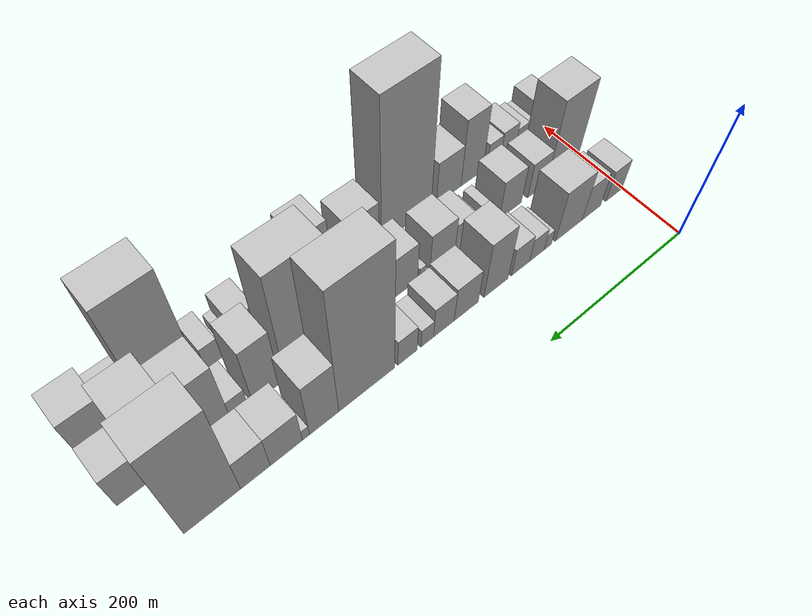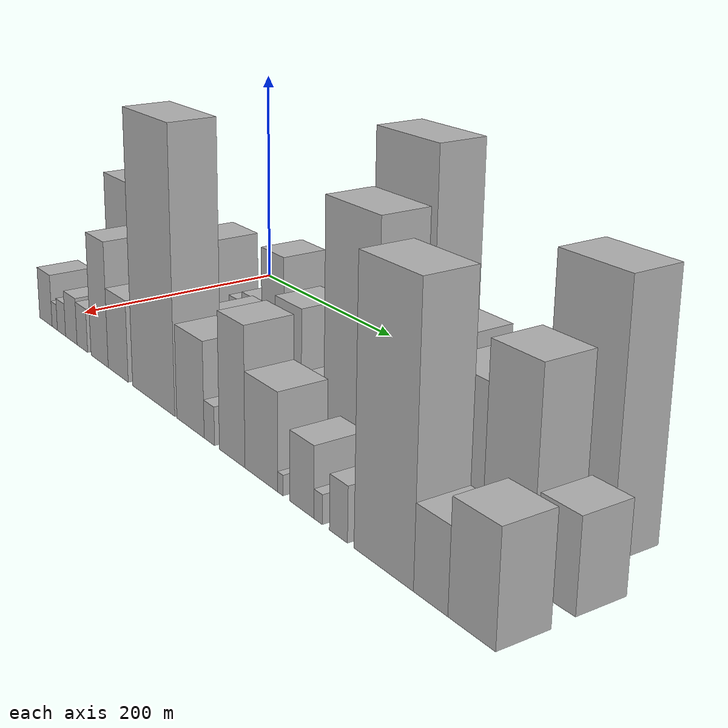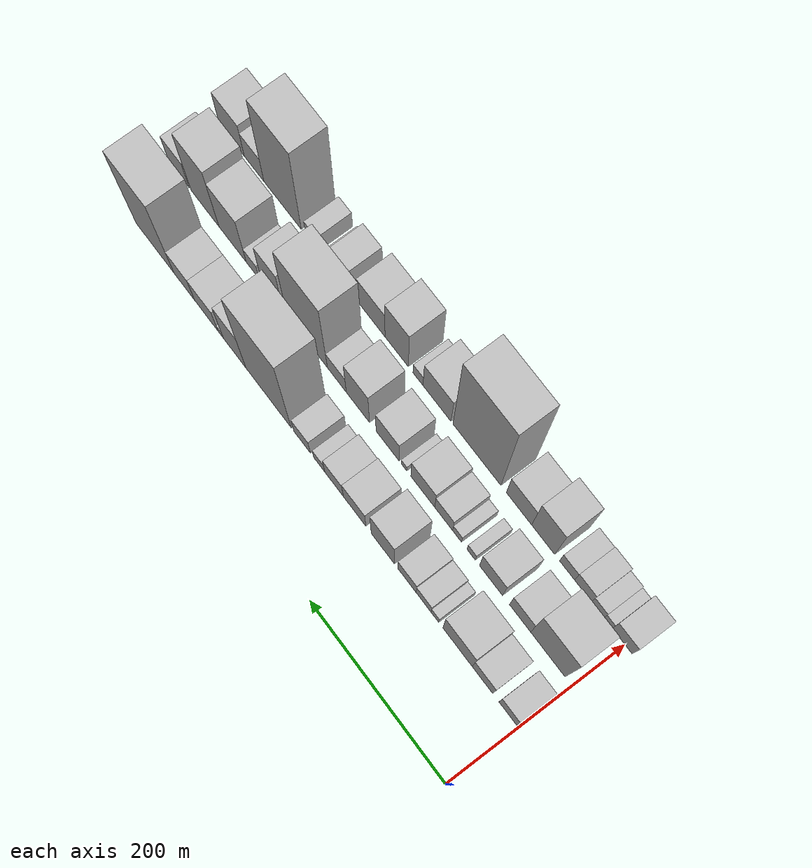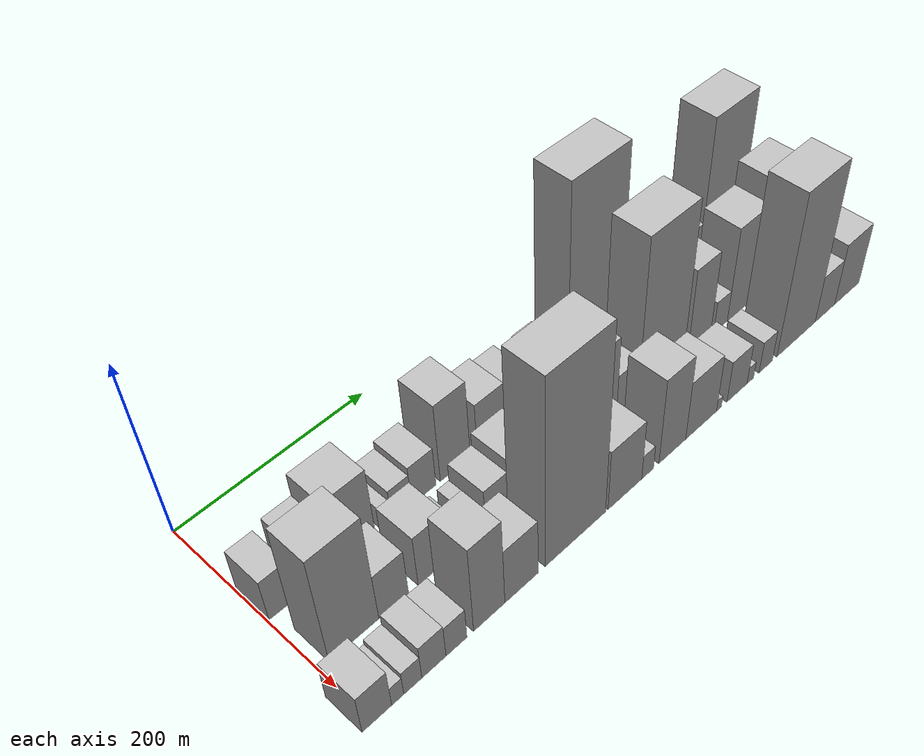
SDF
<sdf version="1.6">
 <world name="default">
  <model name="building_18">
   <static>1</static>
   <pose>100.0000 14.7104 0 0.000000 0.000000 0.000000</pose>
   <link name="link">
    <pose>0 0 25.50 0 0 0</pose>
    <collision name="collision"><geometry><box><size>40.0000 26.3379 51.0000</size></box></geometry></collision>
    <visual name="visual">
     <cast_shadows>0</cast_shadows>
     <geometry><box><size>40.0000 26.3379 51.0000</size></box></geometry>
     <material>
      <script>
       <uri>model://HANNAS_wall/materials/scripts</uri>
       <uri>model://HANNAS_wall/materials/textures</uri>
       <name>vrc/HANNAS_wall</name>
      </script>
     </material>
    </visual>
   </link>
  </model>
  <model name="building_19">
   <static>1</static>
   <pose>100.0000 51.6035 0 0.000000 0.000000 0.000000</pose>
   <link name="link">
    <pose>0 0 28.50 0 0 0</pose>
    <collision name="collision"><geometry><box><size>40.0000 29.4482 57.0000</size></box></geometry></collision>
    <visual name="visual">
     <cast_shadows>0</cast_shadows>
     <geometry><box><size>40.0000 29.4482 57.0000</size></box></geometry>
     <material>
      <script>
       <uri>model://HANNAS_wall/materials/scripts</uri>
       <uri>model://HANNAS_wall/materials/textures</uri>
       <name>vrc/HANNAS_wall</name>
      </script>
     </material>
    </visual>
   </link>
  </model>
  <model name="building_20">
   <static>1</static>
   <pose>100.0000 87.7488 0 0.000000 0.000000 0.000000</pose>
   <link name="link">
    <pose>0 0 42.00 0 0 0</pose>
    <collision name="collision"><geometry><box><size>40.0000 42.8424 84.0000</size></box></geometry></collision>
    <visual name="visual">
     <cast_shadows>0</cast_shadows>
     <geometry><box><size>40.0000 42.8424 84.0000</size></box></geometry>
     <material>
      <script>
       <uri>model://HANNAS_wall/materials/scripts</uri>
       <uri>model://HANNAS_wall/materials/textures</uri>
       <name>vrc/HANNAS_wall</name>
      </script>
     </material>
    </visual>
   </link>
  </model>
  <model name="building_21">
   <static>1</static>
   <pose>100.0000 120.8142 0 0.000000 0.000000 0.000000</pose>
   <link name="link">
    <pose>0 0 13.50 0 0 0</pose>
    <collision name="collision"><geometry><box><size>40.0000 11.2885 27.0000</size></box></geometry></collision>
    <visual name="visual">
     <cast_shadows>0</cast_shadows>
     <geometry><box><size>40.0000 11.2885 27.0000</size></box></geometry>
     <material>
      <script>
       <uri>model://HANNAS_wall/materials/scripts</uri>
       <uri>model://HANNAS_wall/materials/textures</uri>
       <name>vrc/HANNAS_wall</name>
      </script>
     </material>
    </visual>
   </link>
  </model>
  <model name="building_22">
   <static>1</static>
   <pose>100.0000 137.4908 0 0.000000 0.000000 0.000000</pose>
   <link name="link">
    <pose>0 0 19.50 0 0 0</pose>
    <collision name="collision"><geometry><box><size>40.0000 22.0646 39.0000</size></box></geometry></collision>
    <visual name="visual">
     <cast_shadows>0</cast_shadows>
     <geometry><box><size>40.0000 22.0646 39.0000</size></box></geometry>
     <material>
      <script>
       <uri>model://HANNAS_wall/materials/scripts</uri>
       <uri>model://HANNAS_wall/materials/textures</uri>
       <name>vrc/HANNAS_wall</name>
      </script>
     </material>
    </visual>
   </link>
  </model>
  <model name="building_23">
   <static>1</static>
   <pose>100.0000 162.0961 0 0.000000 0.000000 0.000000</pose>
   <link name="link">
    <pose>0 0 24.00 0 0 0</pose>
    <collision name="collision"><geometry><box><size>40.0000 27.1462 48.0000</size></box></geometry></collision>
    <visual name="visual">
     <cast_shadows>0</cast_shadows>
     <geometry><box><size>40.0000 27.1462 48.0000</size></box></geometry>
     <material>
      <script>
       <uri>model://HANNAS_wall/materials/scripts</uri>
       <uri>model://HANNAS_wall/materials/textures</uri>
       <name>vrc/HANNAS_wall</name>
      </script>
     </material>
    </visual>
   </link>
  </model>
  <model name="building_24">
   <static>1</static>
   <pose>100.0000 198.0278 0 0.000000 0.000000 0.000000</pose>
   <link name="link">
    <pose>0 0 48.00 0 0 0</pose>
    <collision name="collision"><geometry><box><size>40.0000 34.7173 96.0000</size></box></geometry></collision>
    <visual name="visual">
     <cast_shadows>0</cast_shadows>
     <geometry><box><size>40.0000 34.7173 96.0000</size></box></geometry>
     <material>
      <script>
       <uri>model://HANNAS_wall/materials/scripts</uri>
       <uri>model://HANNAS_wall/materials/textures</uri>
       <name>vrc/HANNAS_wall</name>
      </script>
     </material>
    </visual>
   </link>
  </model>
  <model name="building_25">
   <static>1</static>
   <pose>100.0000 240.3025 0 0.000000 0.000000 0.000000</pose>
   <link name="link">
    <pose>0 0 30.00 0 0 0</pose>
    <collision name="collision"><geometry><box><size>40.0000 33.8321 60.0000</size></box></geometry></collision>
    <visual name="visual">
     <cast_shadows>0</cast_shadows>
     <geometry><box><size>40.0000 33.8321 60.0000</size></box></geometry>
     <material>
      <script>
       <uri>model://HANNAS_wall/materials/scripts</uri>
       <uri>model://HANNAS_wall/materials/textures</uri>
       <name>vrc/HANNAS_wall</name>
      </script>
     </material>
    </visual>
   </link>
  </model>
  <model name="building_26">
   <static>1</static>
   <pose>100.0000 271.3772 0 0.000000 0.000000 0.000000</pose>
   <link name="link">
    <pose>0 0 27.00 0 0 0</pose>
    <collision name="collision"><geometry><box><size>40.0000 28.3173 54.0000</size></box></geometry></collision>
    <visual name="visual">
     <cast_shadows>0</cast_shadows>
     <geometry><box><size>40.0000 28.3173 54.0000</size></box></geometry>
     <material>
      <script>
       <uri>model://HANNAS_wall/materials/scripts</uri>
       <uri>model://HANNAS_wall/materials/textures</uri>
       <name>vrc/HANNAS_wall</name>
      </script>
     </material>
    </visual>
   </link>
  </model>
  <model name="building_27">
   <static>1</static>
   <pose>100.0000 293.9437 0 0.000000 0.000000 0.000000</pose>
   <link name="link">
    <pose>0 0 16.50 0 0 0</pose>
    <collision name="collision"><geometry><box><size>40.0000 16.8156 33.0000</size></box></geometry></collision>
    <visual name="visual">
     <cast_shadows>0</cast_shadows>
     <geometry><box><size>40.0000 16.8156 33.0000</size></box></geometry>
     <material>
      <script>
       <uri>model://HANNAS_wall/materials/scripts</uri>
       <uri>model://HANNAS_wall/materials/textures</uri>
       <name>vrc/HANNAS_wall</name>
      </script>
     </material>
    </visual>
   </link>
  </model>
  <model name="building_28">
   <static>1</static>
   <pose>100.0000 320.1187 0 0.000000 0.000000 0.000000</pose>
   <link name="link">
    <pose>0 0 24.00 0 0 0</pose>
    <collision name="collision"><geometry><box><size>40.0000 25.5344 48.0000</size></box></geometry></collision>
    <visual name="visual">
     <cast_shadows>0</cast_shadows>
     <geometry><box><size>40.0000 25.5344 48.0000</size></box></geometry>
     <material>
      <script>
       <uri>model://HANNAS_wall/materials/scripts</uri>
       <uri>model://HANNAS_wall/materials/textures</uri>
       <name>vrc/HANNAS_wall</name>
      </script>
     </material>
    </visual>
   </link>
  </model>
  <model name="building_29">
   <static>1</static>
   <pose>100.0000 372.0678 0 0.000000 0.000000 0.000000</pose>
   <link name="link">
    <pose>0 0 112.50 0 0 0</pose>
    <collision name="collision"><geometry><box><size>40.0000 70.3638 225.0000</size></box></geometry></collision>
    <visual name="visual">
     <cast_shadows>0</cast_shadows>
     <geometry><box><size>40.0000 70.3638 225.0000</size></box></geometry>
     <material>
      <script>
       <uri>model://HANNAS_wall/materials/scripts</uri>
       <uri>model://HANNAS_wall/materials/textures</uri>
       <name>vrc/HANNAS_wall</name>
      </script>
     </material>
    </visual>
   </link>
  </model>
  <model name="building_30">
   <static>1</static>
   <pose>100.0000 424.9010 0 0.000000 0.000000 0.000000</pose>
   <link name="link">
    <pose>0 0 51.00 0 0 0</pose>
    <collision name="collision"><geometry><box><size>40.0000 35.3027 102.0000</size></box></geometry></collision>
    <visual name="visual">
     <cast_shadows>0</cast_shadows>
     <geometry><box><size>40.0000 35.3027 102.0000</size></box></geometry>
     <material>
      <script>
       <uri>model://HANNAS_wall/materials/scripts</uri>
       <uri>model://HANNAS_wall/materials/textures</uri>
       <name>vrc/HANNAS_wall</name>
      </script>
     </material>
    </visual>
   </link>
  </model>
  <model name="building_31">
   <static>1</static>
   <pose>100.0000 446.7557 0 0.000000 0.000000 0.000000</pose>
   <link name="link">
    <pose>0 0 10.50 0 0 0</pose>
    <collision name="collision"><geometry><box><size>40.0000 8.4066 21.0000</size></box></geometry></collision>
    <visual name="visual">
     <cast_shadows>0</cast_shadows>
     <geometry><box><size>40.0000 8.4066 21.0000</size></box></geometry>
     <material>
      <script>
       <uri>model://HANNAS_wall/materials/scripts</uri>
       <uri>model://HANNAS_wall/materials/textures</uri>
       <name>vrc/HANNAS_wall</name>
      </script>
     </material>
    </visual>
   </link>
  </model>
  <model name="building_32">
   <static>1</static>
   <pose>100.0000 469.5664 0 0.000000 0.000000 0.000000</pose>
   <link name="link">
    <pose>0 0 31.50 0 0 0</pose>
    <collision name="collision"><geometry><box><size>40.0000 37.2149 63.0000</size></box></geometry></collision>
    <visual name="visual">
     <cast_shadows>0</cast_shadows>
     <geometry><box><size>40.0000 37.2149 63.0000</size></box></geometry>
     <material>
      <script>
       <uri>model://HANNAS_wall/materials/scripts</uri>
       <uri>model://HANNAS_wall/materials/textures</uri>
       <name>vrc/HANNAS_wall</name>
      </script>
     </material>
    </visual>
   </link>
  </model>
  <model name="building_33">
   <static>1</static>
   <pose>100.0000 504.7815 0 0.000000 0.000000 0.000000</pose>
   <link name="link">
    <pose>0 0 31.50 0 0 0</pose>
    <collision name="collision"><geometry><box><size>40.0000 33.2151 63.0000</size></box></geometry></collision>
    <visual name="visual">
     <cast_shadows>0</cast_shadows>
     <geometry><box><size>40.0000 33.2151 63.0000</size></box></geometry>
     <material>
      <script>
       <uri>model://HANNAS_wall/materials/scripts</uri>
       <uri>model://HANNAS_wall/materials/textures</uri>
       <name>vrc/HANNAS_wall</name>
      </script>
     </material>
    </visual>
   </link>
  </model>
  <model name="building_34">
   <static>1</static>
   <pose>100.0000 552.0399 0 0.000000 0.000000 0.000000</pose>
   <link name="link">
    <pose>0 0 91.50 0 0 0</pose>
    <collision name="collision"><geometry><box><size>40.0000 61.3017 183.0000</size></box></geometry></collision>
    <visual name="visual">
     <cast_shadows>0</cast_shadows>
     <geometry><box><size>40.0000 61.3017 183.0000</size></box></geometry>
     <material>
      <script>
       <uri>model://HANNAS_wall/materials/scripts</uri>
       <uri>model://HANNAS_wall/materials/textures</uri>
       <name>vrc/HANNAS_wall</name>
      </script>
     </material>
    </visual>
   </link>
  </model>
  <model name="building_52">
   <static>1</static>
   <pose>160.0000 34.5649 0 0.000000 0.000000 0.000000</pose>
   <link name="link">
    <pose>0 0 66.00 0 0 0</pose>
    <collision name="collision"><geometry><box><size>40.0000 49.4119 132.0000</size></box></geometry></collision>
    <visual name="visual">
     <cast_shadows>0</cast_shadows>
     <geometry><box><size>40.0000 49.4119 132.0000</size></box></geometry>
     <material>
      <script>
       <uri>model://HANNAS_wall/materials/scripts</uri>
       <uri>model://HANNAS_wall/materials/textures</uri>
       <name>vrc/HANNAS_wall</name>
      </script>
     </material>
    </visual>
   </link>
  </model>
  <model name="building_53">
   <static>1</static>
   <pose>160.0000 74.5539 0 0.000000 0.000000 0.000000</pose>
   <link name="link">
    <pose>0 0 28.50 0 0 0</pose>
    <collision name="collision"><geometry><box><size>40.0000 30.5662 57.0000</size></box></geometry></collision>
    <visual name="visual">
     <cast_shadows>0</cast_shadows>
     <geometry><box><size>40.0000 30.5662 57.0000</size></box></geometry>
     <material>
      <script>
       <uri>model://HANNAS_wall/materials/scripts</uri>
       <uri>model://HANNAS_wall/materials/textures</uri>
       <name>vrc/HANNAS_wall</name>
      </script>
     </material>
    </visual>
   </link>
  </model>
  <model name="building_54">
   <static>1</static>
   <pose>160.0000 116.7349 0 0.000000 0.000000 0.000000</pose>
   <link name="link">
    <pose>0 0 31.50 0 0 0</pose>
    <collision name="collision"><geometry><box><size>40.0000 33.7958 63.0000</size></box></geometry></collision>
    <visual name="visual">
     <cast_shadows>0</cast_shadows>
     <geometry><box><size>40.0000 33.7958 63.0000</size></box></geometry>
     <material>
      <script>
       <uri>model://HANNAS_wall/materials/scripts</uri>
       <uri>model://HANNAS_wall/materials/textures</uri>
       <name>vrc/HANNAS_wall</name>
      </script>
     </material>
    </visual>
   </link>
  </model>
  <model name="building_55">
   <static>1</static>
   <pose>160.0000 145.8036 0 0.000000 0.000000 0.000000</pose>
   <link name="link">
    <pose>0 0 13.50 0 0 0</pose>
    <collision name="collision"><geometry><box><size>40.0000 12.3415 27.0000</size></box></geometry></collision>
    <visual name="visual">
     <cast_shadows>0</cast_shadows>
     <geometry><box><size>40.0000 12.3415 27.0000</size></box></geometry>
     <material>
      <script>
       <uri>model://HANNAS_wall/materials/scripts</uri>
       <uri>model://HANNAS_wall/materials/textures</uri>
       <name>vrc/HANNAS_wall</name>
      </script>
     </material>
    </visual>
   </link>
  </model>
  <model name="building_56">
   <static>1</static>
   <pose>160.0000 166.6373 0 0.000000 0.000000 0.000000</pose>
   <link name="link">
    <pose>0 0 13.50 0 0 0</pose>
    <collision name="collision"><geometry><box><size>40.0000 13.3260 27.0000</size></box></geometry></collision>
    <visual name="visual">
     <cast_shadows>0</cast_shadows>
     <geometry><box><size>40.0000 13.3260 27.0000</size></box></geometry>
     <material>
      <script>
       <uri>model://HANNAS_wall/materials/scripts</uri>
       <uri>model://HANNAS_wall/materials/textures</uri>
       <name>vrc/HANNAS_wall</name>
      </script>
     </material>
    </visual>
   </link>
  </model>
  <model name="building_57">
   <static>1</static>
   <pose>160.0000 186.5651 0 0.000000 0.000000 0.000000</pose>
   <link name="link">
    <pose>0 0 24.00 0 0 0</pose>
    <collision name="collision"><geometry><box><size>40.0000 26.5296 48.0000</size></box></geometry></collision>
    <visual name="visual">
     <cast_shadows>0</cast_shadows>
     <geometry><box><size>40.0000 26.5296 48.0000</size></box></geometry>
     <material>
      <script>
       <uri>model://HANNAS_wall/materials/scripts</uri>
       <uri>model://HANNAS_wall/materials/textures</uri>
       <name>vrc/HANNAS_wall</name>
      </script>
     </material>
    </visual>
   </link>
  </model>
  <model name="building_58">
   <static>1</static>
   <pose>160.0000 217.6820 0 0.000000 0.000000 0.000000</pose>
   <link name="link">
    <pose>0 0 31.50 0 0 0</pose>
    <collision name="collision"><geometry><box><size>40.0000 35.7043 63.0000</size></box></geometry></collision>
    <visual name="visual">
     <cast_shadows>0</cast_shadows>
     <geometry><box><size>40.0000 35.7043 63.0000</size></box></geometry>
     <material>
      <script>
       <uri>model://HANNAS_wall/materials/scripts</uri>
       <uri>model://HANNAS_wall/materials/textures</uri>
       <name>vrc/HANNAS_wall</name>
      </script>
     </material>
    </visual>
   </link>
  </model>
  <model name="building_59">
   <static>1</static>
   <pose>160.0000 245.8724 0 0.000000 0.000000 0.000000</pose>
   <link name="link">
    <pose>0 0 9.00 0 0 0</pose>
    <collision name="collision"><geometry><box><size>40.0000 8.6763 18.0000</size></box></geometry></collision>
    <visual name="visual">
     <cast_shadows>0</cast_shadows>
     <geometry><box><size>40.0000 8.6763 18.0000</size></box></geometry>
     <material>
      <script>
       <uri>model://HANNAS_wall/materials/scripts</uri>
       <uri>model://HANNAS_wall/materials/textures</uri>
       <name>vrc/HANNAS_wall</name>
      </script>
     </material>
    </visual>
   </link>
  </model>
  <model name="building_60">
   <static>1</static>
   <pose>160.0000 270.5548 0 0.000000 0.000000 0.000000</pose>
   <link name="link">
    <pose>0 0 34.50 0 0 0</pose>
    <collision name="collision"><geometry><box><size>40.0000 34.6885 69.0000</size></box></geometry></collision>
    <visual name="visual">
     <cast_shadows>0</cast_shadows>
     <geometry><box><size>40.0000 34.6885 69.0000</size></box></geometry>
     <material>
      <script>
       <uri>model://HANNAS_wall/materials/scripts</uri>
       <uri>model://HANNAS_wall/materials/textures</uri>
       <name>vrc/HANNAS_wall</name>
      </script>
     </material>
    </visual>
   </link>
  </model>
  <model name="building_61">
   <static>1</static>
   <pose>160.0000 315.6070 0 0.000000 0.000000 0.000000</pose>
   <link name="link">
    <pose>0 0 49.50 0 0 0</pose>
    <collision name="collision"><geometry><box><size>40.0000 35.4160 99.0000</size></box></geometry></collision>
    <visual name="visual">
     <cast_shadows>0</cast_shadows>
     <geometry><box><size>40.0000 35.4160 99.0000</size></box></geometry>
     <material>
      <script>
       <uri>model://HANNAS_wall/materials/scripts</uri>
       <uri>model://HANNAS_wall/materials/textures</uri>
       <name>vrc/HANNAS_wall</name>
      </script>
     </material>
    </visual>
   </link>
  </model>
  <model name="building_62">
   <static>1</static>
   <pose>160.0000 347.8236 0 0.000000 0.000000 0.000000</pose>
   <link name="link">
    <pose>0 0 25.50 0 0 0</pose>
    <collision name="collision"><geometry><box><size>40.0000 29.0172 51.0000</size></box></geometry></collision>
    <visual name="visual">
     <cast_shadows>0</cast_shadows>
     <geometry><box><size>40.0000 29.0172 51.0000</size></box></geometry>
     <material>
      <script>
       <uri>model://HANNAS_wall/materials/scripts</uri>
       <uri>model://HANNAS_wall/materials/textures</uri>
       <name>vrc/HANNAS_wall</name>
      </script>
     </material>
    </visual>
   </link>
  </model>
  <model name="building_63">
   <static>1</static>
   <pose>160.0000 393.7806 0 0.000000 0.000000 0.000000</pose>
   <link name="link">
    <pose>0 0 94.50 0 0 0</pose>
    <collision name="collision"><geometry><box><size>40.0000 62.8969 189.0000</size></box></geometry></collision>
    <visual name="visual">
     <cast_shadows>0</cast_shadows>
     <geometry><box><size>40.0000 62.8969 189.0000</size></box></geometry>
     <material>
      <script>
       <uri>model://HANNAS_wall/materials/scripts</uri>
       <uri>model://HANNAS_wall/materials/textures</uri>
       <name>vrc/HANNAS_wall</name>
      </script>
     </material>
    </visual>
   </link>
  </model>
  <model name="building_64">
   <static>1</static>
   <pose>160.0000 447.6632 0 0.000000 0.000000 0.000000</pose>
   <link name="link">
    <pose>0 0 52.50 0 0 0</pose>
    <collision name="collision"><geometry><box><size>40.0000 32.8683 105.0000</size></box></geometry></collision>
    <visual name="visual">
     <cast_shadows>0</cast_shadows>
     <geometry><box><size>40.0000 32.8683 105.0000</size></box></geometry>
     <material>
      <script>
       <uri>model://HANNAS_wall/materials/scripts</uri>
       <uri>model://HANNAS_wall/materials/textures</uri>
       <name>vrc/HANNAS_wall</name>
      </script>
     </material>
    </visual>
   </link>
  </model>
  <model name="building_65">
   <static>1</static>
   <pose>160.0000 479.2916 0 0.000000 0.000000 0.000000</pose>
   <link name="link">
    <pose>0 0 19.50 0 0 0</pose>
    <collision name="collision"><geometry><box><size>40.0000 20.3886 39.0000</size></box></geometry></collision>
    <visual name="visual">
     <cast_shadows>0</cast_shadows>
     <geometry><box><size>40.0000 20.3886 39.0000</size></box></geometry>
     <material>
      <script>
       <uri>model://HANNAS_wall/materials/scripts</uri>
       <uri>model://HANNAS_wall/materials/textures</uri>
       <name>vrc/HANNAS_wall</name>
      </script>
     </material>
    </visual>
   </link>
  </model>
  <model name="building_66">
   <static>1</static>
   <pose>160.0000 511.3182 0 0.000000 0.000000 0.000000</pose>
   <link name="link">
    <pose>0 0 57.00 0 0 0</pose>
    <collision name="collision"><geometry><box><size>40.0000 43.6646 114.0000</size></box></geometry></collision>
    <visual name="visual">
     <cast_shadows>0</cast_shadows>
     <geometry><box><size>40.0000 43.6646 114.0000</size></box></geometry>
     <material>
      <script>
       <uri>model://HANNAS_wall/materials/scripts</uri>
       <uri>model://HANNAS_wall/materials/textures</uri>
       <name>vrc/HANNAS_wall</name>
      </script>
     </material>
    </visual>
   </link>
  </model>
  <model name="building_67">
   <static>1</static>
   <pose>160.0000 555.5970 0 0.000000 0.000000 0.000000</pose>
   <link name="link">
    <pose>0 0 70.50 0 0 0</pose>
    <collision name="collision"><geometry><box><size>40.0000 44.8931 141.0000</size></box></geometry></collision>
    <visual name="visual">
     <cast_shadows>0</cast_shadows>
     <geometry><box><size>40.0000 44.8931 141.0000</size></box></geometry>
     <material>
      <script>
       <uri>model://HANNAS_wall/materials/scripts</uri>
       <uri>model://HANNAS_wall/materials/textures</uri>
       <name>vrc/HANNAS_wall</name>
      </script>
     </material>
    </visual>
   </link>
  </model>
  <model name="building_68">
   <static>1</static>
   <pose>160.0000 597.5951 0 0.000000 0.000000 0.000000</pose>
   <link name="link">
    <pose>0 0 31.50 0 0 0</pose>
    <collision name="collision"><geometry><box><size>40.0000 33.1031 63.0000</size></box></geometry></collision>
    <visual name="visual">
     <cast_shadows>0</cast_shadows>
     <geometry><box><size>40.0000 33.1031 63.0000</size></box></geometry>
     <material>
      <script>
       <uri>model://HANNAS_wall/materials/scripts</uri>
       <uri>model://HANNAS_wall/materials/textures</uri>
       <name>vrc/HANNAS_wall</name>
      </script>
     </material>
    </visual>
   </link>
  </model>
  <model name="building_87">
   <static>1</static>
   <pose>220.0000 3.9363 0 0.000000 0.000000 0.000000</pose>
   <link name="link">
    <pose>0 0 24.00 0 0 0</pose>
    <collision name="collision"><geometry><box><size>40.0000 28.3279 48.0000</size></box></geometry></collision>
    <visual name="visual">
     <cast_shadows>0</cast_shadows>
     <geometry><box><size>40.0000 28.3279 48.0000</size></box></geometry>
     <material>
      <script>
       <uri>model://HANNAS_wall/materials/scripts</uri>
       <uri>model://HANNAS_wall/materials/textures</uri>
       <name>vrc/HANNAS_wall</name>
      </script>
     </material>
    </visual>
   </link>
  </model>
  <model name="building_88">
   <static>1</static>
   <pose>220.0000 23.9830 0 0.000000 0.000000 0.000000</pose>
   <link name="link">
    <pose>0 0 12.00 0 0 0</pose>
    <collision name="collision"><geometry><box><size>40.0000 11.7654 24.0000</size></box></geometry></collision>
    <visual name="visual">
     <cast_shadows>0</cast_shadows>
     <geometry><box><size>40.0000 11.7654 24.0000</size></box></geometry>
     <material>
      <script>
       <uri>model://HANNAS_wall/materials/scripts</uri>
       <uri>model://HANNAS_wall/materials/textures</uri>
       <name>vrc/HANNAS_wall</name>
      </script>
     </material>
    </visual>
   </link>
  </model>
  <model name="building_89">
   <static>1</static>
   <pose>220.0000 38.7899 0 0.000000 0.000000 0.000000</pose>
   <link name="link">
    <pose>0 0 15.00 0 0 0</pose>
    <collision name="collision"><geometry><box><size>40.0000 17.8484 30.0000</size></box></geometry></collision>
    <visual name="visual">
     <cast_shadows>0</cast_shadows>
     <geometry><box><size>40.0000 17.8484 30.0000</size></box></geometry>
     <material>
      <script>
       <uri>model://HANNAS_wall/materials/scripts</uri>
       <uri>model://HANNAS_wall/materials/textures</uri>
       <name>vrc/HANNAS_wall</name>
      </script>
     </material>
    </visual>
   </link>
  </model>
  <model name="building_90">
   <static>1</static>
   <pose>220.0000 59.9323 0 0.000000 0.000000 0.000000</pose>
   <link name="link">
    <pose>0 0 21.00 0 0 0</pose>
    <collision name="collision"><geometry><box><size>40.0000 24.4364 42.0000</size></box></geometry></collision>
    <visual name="visual">
     <cast_shadows>0</cast_shadows>
     <geometry><box><size>40.0000 24.4364 42.0000</size></box></geometry>
     <material>
      <script>
       <uri>model://HANNAS_wall/materials/scripts</uri>
       <uri>model://HANNAS_wall/materials/textures</uri>
       <name>vrc/HANNAS_wall</name>
      </script>
     </material>
    </visual>
   </link>
  </model>
  <model name="building_91">
   <static>1</static>
   <pose>220.0000 82.9774 0 0.000000 0.000000 0.000000</pose>
   <link name="link">
    <pose>0 0 19.50 0 0 0</pose>
    <collision name="collision"><geometry><box><size>40.0000 21.6538 39.0000</size></box></geometry></collision>
    <visual name="visual">
     <cast_shadows>0</cast_shadows>
     <geometry><box><size>40.0000 21.6538 39.0000</size></box></geometry>
     <material>
      <script>
       <uri>model://HANNAS_wall/materials/scripts</uri>
       <uri>model://HANNAS_wall/materials/textures</uri>
       <name>vrc/HANNAS_wall</name>
      </script>
     </material>
    </visual>
   </link>
  </model>
  <model name="building_92">
   <static>1</static>
   <pose>220.0000 117.6079 0 0.000000 0.000000 0.000000</pose>
   <link name="link">
    <pose>0 0 54.00 0 0 0</pose>
    <collision name="collision"><geometry><box><size>40.0000 33.6072 108.0000</size></box></geometry></collision>
    <visual name="visual">
     <cast_shadows>0</cast_shadows>
     <geometry><box><size>40.0000 33.6072 108.0000</size></box></geometry>
     <material>
      <script>
       <uri>model://HANNAS_wall/materials/scripts</uri>
       <uri>model://HANNAS_wall/materials/textures</uri>
       <name>vrc/HANNAS_wall</name>
      </script>
     </material>
    </visual>
   </link>
  </model>
  <model name="building_93">
   <static>1</static>
   <pose>220.0000 152.9828 0 0.000000 0.000000 0.000000</pose>
   <link name="link">
    <pose>0 0 34.50 0 0 0</pose>
    <collision name="collision"><geometry><box><size>40.0000 37.1426 69.0000</size></box></geometry></collision>
    <visual name="visual">
     <cast_shadows>0</cast_shadows>
     <geometry><box><size>40.0000 37.1426 69.0000</size></box></geometry>
     <material>
      <script>
       <uri>model://HANNAS_wall/materials/scripts</uri>
       <uri>model://HANNAS_wall/materials/textures</uri>
       <name>vrc/HANNAS_wall</name>
      </script>
     </material>
    </visual>
   </link>
  </model>
  <model name="building_94">
   <static>1</static>
   <pose>220.0000 215.2539 0 0.000000 0.000000 0.000000</pose>
   <link name="link">
    <pose>0 0 112.50 0 0 0</pose>
    <collision name="collision"><geometry><box><size>40.0000 71.3997 225.0000</size></box></geometry></collision>
    <visual name="visual">
     <cast_shadows>0</cast_shadows>
     <geometry><box><size>40.0000 71.3997 225.0000</size></box></geometry>
     <material>
      <script>
       <uri>model://HANNAS_wall/materials/scripts</uri>
       <uri>model://HANNAS_wall/materials/textures</uri>
       <name>vrc/HANNAS_wall</name>
      </script>
     </material>
    </visual>
   </link>
  </model>
  <model name="building_95">
   <static>1</static>
   <pose>220.0000 275.0734 0 0.000000 0.000000 0.000000</pose>
   <link name="link">
    <pose>0 0 37.50 0 0 0</pose>
    <collision name="collision"><geometry><box><size>40.0000 42.2392 75.0000</size></box></geometry></collision>
    <visual name="visual">
     <cast_shadows>0</cast_shadows>
     <geometry><box><size>40.0000 42.2392 75.0000</size></box></geometry>
     <material>
      <script>
       <uri>model://HANNAS_wall/materials/scripts</uri>
       <uri>model://HANNAS_wall/materials/textures</uri>
       <name>vrc/HANNAS_wall</name>
      </script>
     </material>
    </visual>
   </link>
  </model>
  <model name="building_96">
   <static>1</static>
   <pose>220.0000 303.8270 0 0.000000 0.000000 0.000000</pose>
   <link name="link">
    <pose>0 0 15.00 0 0 0</pose>
    <collision name="collision"><geometry><box><size>40.0000 15.2680 30.0000</size></box></geometry></collision>
    <visual name="visual">
     <cast_shadows>0</cast_shadows>
     <geometry><box><size>40.0000 15.2680 30.0000</size></box></geometry>
     <material>
      <script>
       <uri>model://HANNAS_wall/materials/scripts</uri>
       <uri>model://HANNAS_wall/materials/textures</uri>
       <name>vrc/HANNAS_wall</name>
      </script>
     </material>
    </visual>
   </link>
  </model>
  <model name="building_97">
   <static>1</static>
   <pose>220.0000 336.2493 0 0.000000 0.000000 0.000000</pose>
   <link name="link">
    <pose>0 0 52.50 0 0 0</pose>
    <collision name="collision"><geometry><box><size>40.0000 35.5768 105.0000</size></box></geometry></collision>
    <visual name="visual">
     <cast_shadows>0</cast_shadows>
     <geometry><box><size>40.0000 35.5768 105.0000</size></box></geometry>
     <material>
      <script>
       <uri>model://HANNAS_wall/materials/scripts</uri>
       <uri>model://HANNAS_wall/materials/textures</uri>
       <name>vrc/HANNAS_wall</name>
      </script>
     </material>
    </visual>
   </link>
  </model>
  <model name="building_98">
   <static>1</static>
   <pose>220.0000 375.2292 0 0.000000 0.000000 0.000000</pose>
   <link name="link">
    <pose>0 0 36.00 0 0 0</pose>
    <collision name="collision"><geometry><box><size>40.0000 42.3829 72.0000</size></box></geometry></collision>
    <visual name="visual">
     <cast_shadows>0</cast_shadows>
     <geometry><box><size>40.0000 42.3829 72.0000</size></box></geometry>
     <material>
      <script>
       <uri>model://HANNAS_wall/materials/scripts</uri>
       <uri>model://HANNAS_wall/materials/textures</uri>
       <name>vrc/HANNAS_wall</name>
      </script>
     </material>
    </visual>
   </link>
  </model>
  <model name="building_99">
   <static>1</static>
   <pose>220.0000 399.8150 0 0.000000 0.000000 0.000000</pose>
   <link name="link">
    <pose>0 0 7.50 0 0 0</pose>
    <collision name="collision"><geometry><box><size>40.0000 6.7889 15.0000</size></box></geometry></collision>
    <visual name="visual">
     <cast_shadows>0</cast_shadows>
     <geometry><box><size>40.0000 6.7889 15.0000</size></box></geometry>
     <material>
      <script>
       <uri>model://HANNAS_wall/materials/scripts</uri>
       <uri>model://HANNAS_wall/materials/textures</uri>
       <name>vrc/HANNAS_wall</name>
      </script>
     </material>
    </visual>
   </link>
  </model>
  <model name="building_100">
   <static>1</static>
   <pose>220.0000 425.6064 0 0.000000 0.000000 0.000000</pose>
   <link name="link">
    <pose>0 0 25.50 0 0 0</pose>
    <collision name="collision"><geometry><box><size>40.0000 28.7938 51.0000</size></box></geometry></collision>
    <visual name="visual">
     <cast_shadows>0</cast_shadows>
     <geometry><box><size>40.0000 28.7938 51.0000</size></box></geometry>
     <material>
      <script>
       <uri>model://HANNAS_wall/materials/scripts</uri>
       <uri>model://HANNAS_wall/materials/textures</uri>
       <name>vrc/HANNAS_wall</name>
      </script>
     </material>
    </visual>
   </link>
  </model>
  <model name="building_101">
   <static>1</static>
   <pose>220.0000 444.8755 0 0.000000 0.000000 0.000000</pose>
   <link name="link">
    <pose>0 0 10.50 0 0 0</pose>
    <collision name="collision"><geometry><box><size>40.0000 9.7444 21.0000</size></box></geometry></collision>
    <visual name="visual">
     <cast_shadows>0</cast_shadows>
     <geometry><box><size>40.0000 9.7444 21.0000</size></box></geometry>
     <material>
      <script>
       <uri>model://HANNAS_wall/materials/scripts</uri>
       <uri>model://HANNAS_wall/materials/textures</uri>
       <name>vrc/HANNAS_wall</name>
      </script>
     </material>
    </visual>
   </link>
  </model>
  <model name="building_102">
   <static>1</static>
   <pose>220.0000 467.6569 0 0.000000 0.000000 0.000000</pose>
   <link name="link">
    <pose>0 0 19.50 0 0 0</pose>
    <collision name="collision"><geometry><box><size>40.0000 19.8185 39.0000</size></box></geometry></collision>
    <visual name="visual">
     <cast_shadows>0</cast_shadows>
     <geometry><box><size>40.0000 19.8185 39.0000</size></box></geometry>
     <material>
      <script>
       <uri>model://HANNAS_wall/materials/scripts</uri>
       <uri>model://HANNAS_wall/materials/textures</uri>
       <name>vrc/HANNAS_wall</name>
      </script>
     </material>
    </visual>
   </link>
  </model>
  <model name="building_103">
   <static>1</static>
   <pose>220.0000 514.2995 0 0.000000 0.000000 0.000000</pose>
   <link name="link">
    <pose>0 0 96.00 0 0 0</pose>
    <collision name="collision"><geometry><box><size>40.0000 59.4667 192.0000</size></box></geometry></collision>
    <visual name="visual">
     <cast_shadows>0</cast_shadows>
     <geometry><box><size>40.0000 59.4667 192.0000</size></box></geometry>
     <material>
      <script>
       <uri>model://HANNAS_wall/materials/scripts</uri>
       <uri>model://HANNAS_wall/materials/textures</uri>
       <name>vrc/HANNAS_wall</name>
      </script>
     </material>
    </visual>
   </link>
  </model>
  <model name="building_104">
   <static>1</static>
   <pose>220.0000 559.7040 0 0.000000 0.000000 0.000000</pose>
   <link name="link">
    <pose>0 0 28.50 0 0 0</pose>
    <collision name="collision"><geometry><box><size>40.0000 31.3421 57.0000</size></box></geometry></collision>
    <visual name="visual">
     <cast_shadows>0</cast_shadows>
     <geometry><box><size>40.0000 31.3421 57.0000</size></box></geometry>
     <material>
      <script>
       <uri>model://HANNAS_wall/materials/scripts</uri>
       <uri>model://HANNAS_wall/materials/textures</uri>
       <name>vrc/HANNAS_wall</name>
      </script>
     </material>
    </visual>
   </link>
  </model>
  <model name="building_105">
   <static>1</static>
   <pose>220.0000 595.5967 0 0.000000 0.000000 0.000000</pose>
   <link name="link">
    <pose>0 0 37.50 0 0 0</pose>
    <collision name="collision"><geometry><box><size>40.0000 40.4435 75.0000</size></box></geometry></collision>
    <visual name="visual">
     <cast_shadows>0</cast_shadows>
     <geometry><box><size>40.0000 40.4435 75.0000</size></box></geometry>
     <material>
      <script>
       <uri>model://HANNAS_wall/materials/scripts</uri>
       <uri>model://HANNAS_wall/materials/textures</uri>
       <name>vrc/HANNAS_wall</name>
      </script>
     </material>
    </visual>
   </link>
  </model>
 </world>
</sdf>
